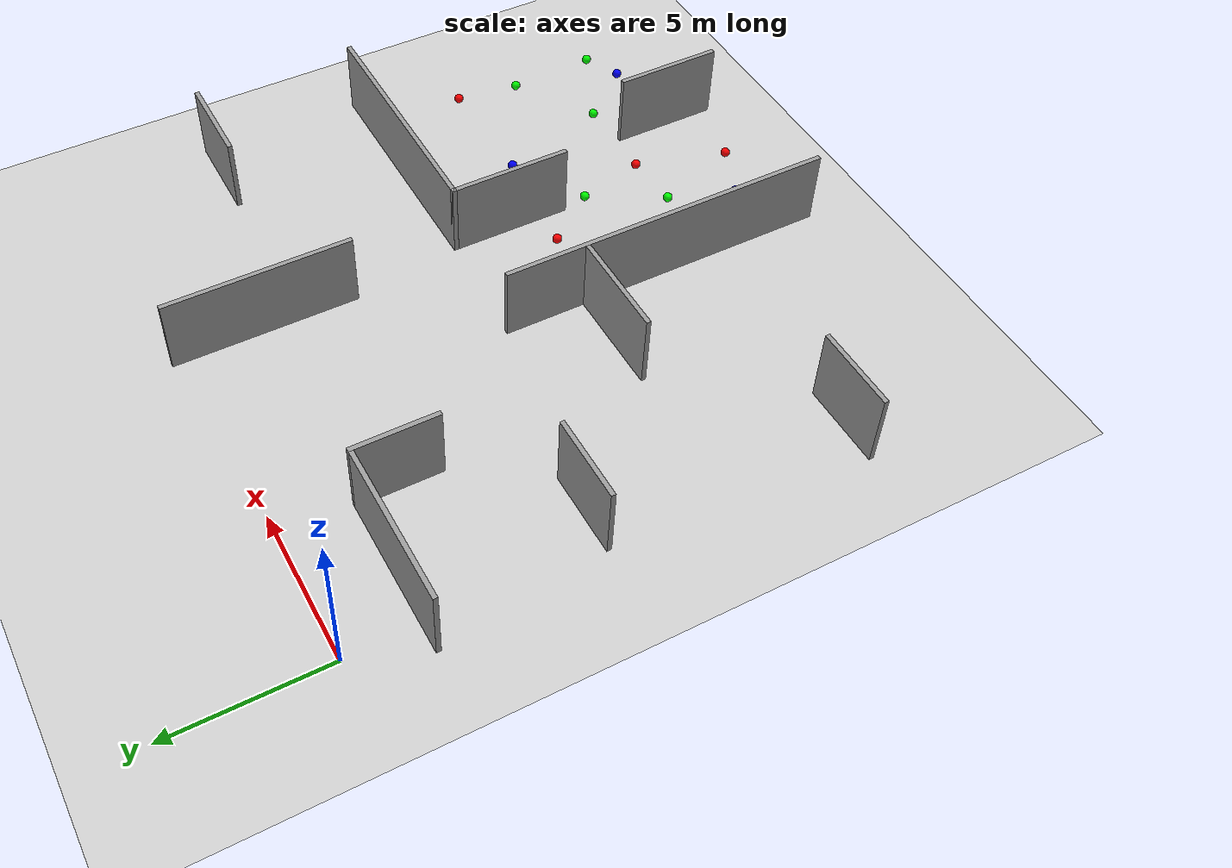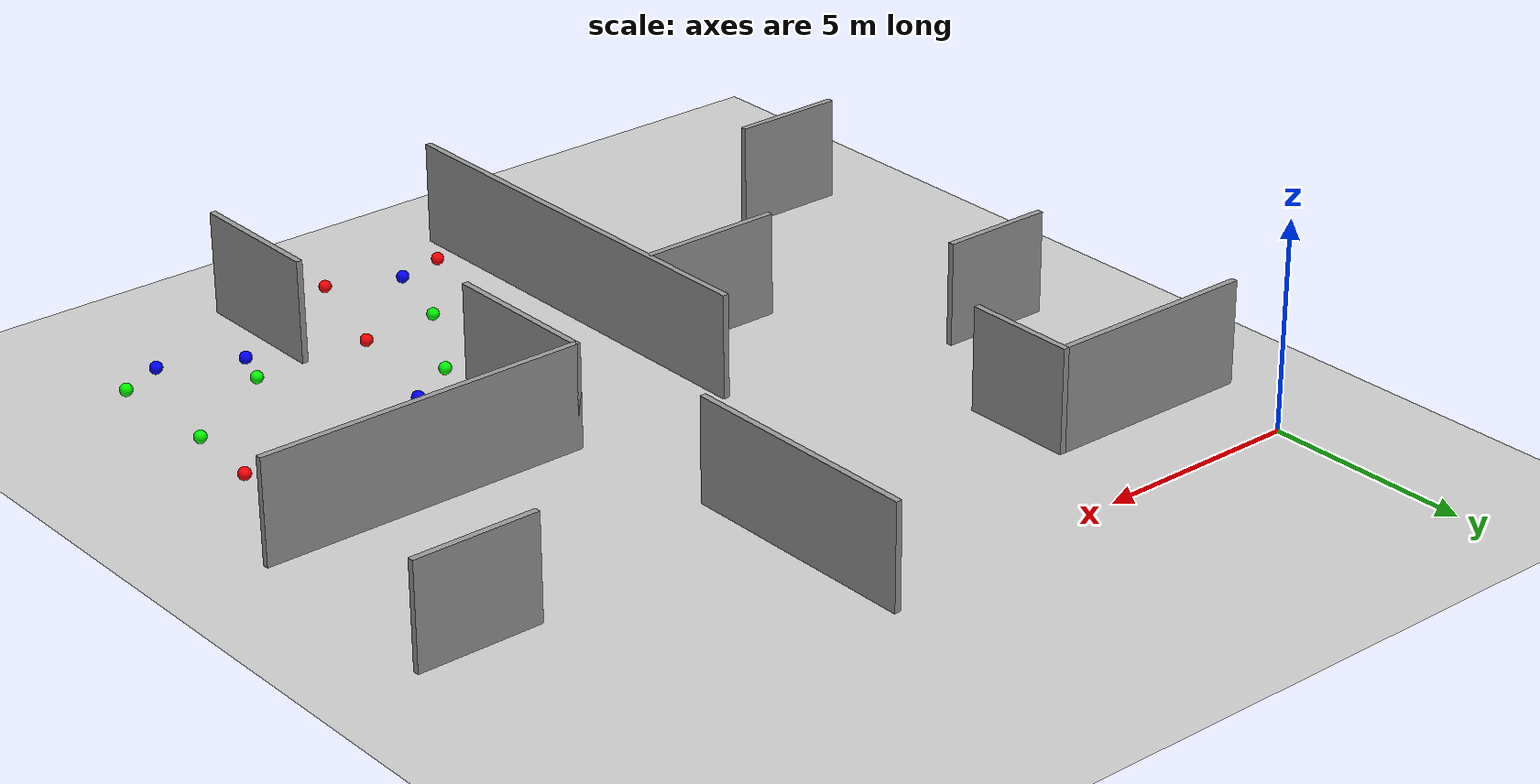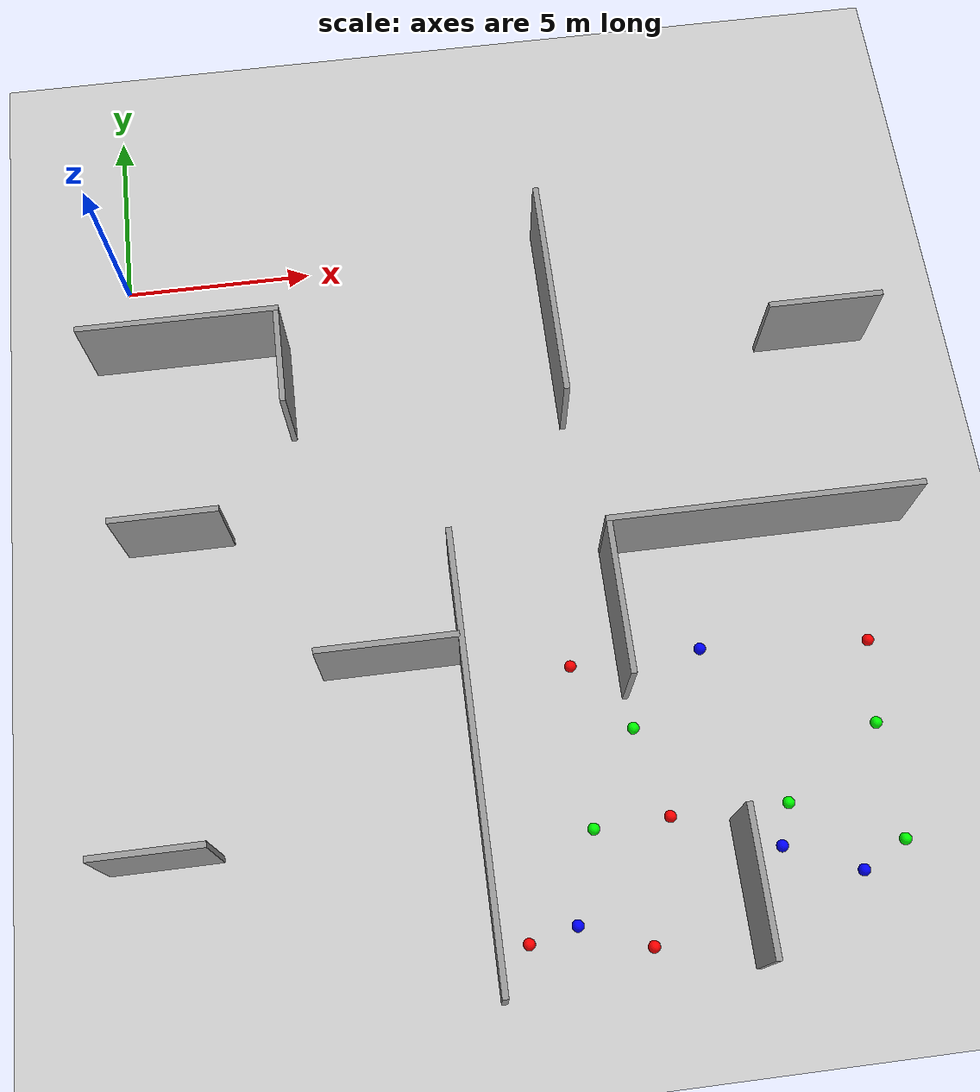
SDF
<sdf version="1.6">
 <world name="default">
  <model name="ground_plane">
   <static>1</static>
   <link name="link">
    <collision name="collision">
     <geometry><plane><normal>0 0 1</normal><size>100 100</size></plane></geometry>
     <surface><friction><ode><mu>100</mu><mu2>50</mu2></ode></friction></surface>
    </collision>
    <visual name="visual">
     <cast_shadows>0</cast_shadows>
     <geometry><plane><normal>0 0 1</normal><size>100 100</size></plane></geometry>
     <material>
      <script><uri>file://media/materials/scripts/gazebo.material</uri><name>Gazebo/Grey</name></script>
     </material>
    </visual>
   </link>
  </model>
  <model name="little_room">
   <pose>9.47484 -9.72783 0 0 -0 0</pose>
   <link name="Wall_15">
    <collision name="Wall_15_Collision">
     <geometry><box><size>11 0.15 2.5</size></box></geometry>
     <pose>0 0 1.25 0 -0 0</pose>
    </collision>
    <visual name="Wall_15_Visual">
     <pose>0 0 1.25 0 -0 0</pose>
     <geometry><box><size>11 0.15 2.5</size></box></geometry>
     <material>
      <script><uri>file://media/materials/scripts/gazebo.material</uri><name>Gazebo/Grey</name></script>
      <ambient>1 1 1 1</ambient>
     </material>
    </visual>
    <pose>-1.47005 -4.68117 0 0 -0 1.5708</pose>
   </link>
   <link name="Wall_17">
    <collision name="Wall_17_Collision">
     <geometry><box><size>8 0.15 2.5</size></box></geometry>
     <pose>0 0 1.25 0 -0 0</pose>
    </collision>
    <visual name="Wall_17_Visual">
     <pose>0 0 1.25 0 -0 0</pose>
     <geometry><box><size>8 0.15 2.5</size></box></geometry>
     <material>
      <script><uri>file://media/materials/scripts/gazebo.material</uri><name>Gazebo/Grey</name></script>
      <ambient>1 1 1 1</ambient>
     </material>
    </visual>
    <pose>6.36864 0.578681 0 0 -0 0</pose>
   </link>
   <link name="Wall_2">
    <collision name="Wall_2_Collision">
     <geometry><box><size>5.25 0.15 2.5</size></box></geometry>
     <pose>0 0 1.25 0 -0 0</pose>
    </collision>
    <visual name="Wall_2_Visual">
     <pose>0 0 1.25 0 -0 0</pose>
     <geometry><box><size>5.25 0.15 2.5</size></box></geometry>
     <material>
      <script><uri>file://media/materials/scripts/gazebo.material</uri><name>Gazebo/Grey</name></script>
      <ambient>1 1 1 1</ambient>
     </material>
    </visual>
    <pose>-7.78484 7.39778 0 0 -0 0</pose>
   </link>
   <link name="Wall_21">
    <collision name="Wall_21_Collision">
     <geometry><box><size>6 0.15 2.5</size></box></geometry>
     <pose>0 0 1.25 0 -0 0</pose>
    </collision>
    <visual name="Wall_21_Visual">
     <pose>0 0 1.25 0 -0 0</pose>
     <geometry><box><size>6 0.15 2.5</size></box></geometry>
     <material>
      <script><uri>file://media/materials/scripts/gazebo.material</uri><name>Gazebo/Grey</name></script>
      <ambient>1 1 1 1</ambient>
     </material>
    </visual>
    <pose>1.9334 7.18117 0 0 0 -1.5708</pose>
   </link>
   <link name="Wall_23">
    <collision name="Wall_23_Collision">
     <geometry><box><size>2.75 0.15 2.5</size></box></geometry>
     <pose>0 0 1.25 0 -0 0</pose>
    </collision>
    <visual name="Wall_23_Visual">
     <pose>0 0 1.25 0 -0 0</pose>
     <geometry><box><size>2.75 0.15 2.5</size></box></geometry>
     <material>
      <script><uri>file://media/materials/scripts/gazebo.material</uri><name>Gazebo/Grey</name></script>
      <ambient>1 1 1 1</ambient>
     </material>
    </visual>
    <pose>-8.3666 2.00617 0 0 -0 0</pose>
   </link>
   <link name="Wall_25">
    <collision name="Wall_25_Collision">
     <geometry><box><size>4 0.15 2.5</size></box></geometry>
     <pose>0 0 1.25 0 -0 0</pose>
    </collision>
    <visual name="Wall_25_Visual">
     <pose>0 0 1.25 0 -0 0</pose>
     <geometry><box><size>4 0.15 2.5</size></box></geometry>
     <material>
      <script><uri>file://media/materials/scripts/gazebo.material</uri><name>Gazebo/Grey</name></script>
      <ambient>1 1 1 1</ambient>
     </material>
    </visual>
    <pose>2.44364 -1.34632 0 0 0 -1.5708</pose>
   </link>
   <link name="Wall_28">
    <collision name="Wall_28_Collision">
     <geometry><box><size>3.5 0.15 2.5</size></box></geometry>
     <pose>0 0 1.25 0 -0 0</pose>
    </collision>
    <visual name="Wall_28_Visual">
     <pose>0 0 1.25 0 -0 0</pose>
     <geometry><box><size>3.5 0.15 2.5</size></box></geometry>
     <material>
      <script><uri>file://media/materials/scripts/gazebo.material</uri><name>Gazebo/Grey</name></script>
      <ambient>1 1 1 1</ambient>
     </material>
    </visual>
    <pose>-3.25737 -1.88188 0 0 -0 3.14159</pose>
   </link>
   <link name="Wall_3">
    <collision name="Wall_3_Collision">
     <geometry><box><size>2.75 0.15 2.5</size></box></geometry>
     <pose>0 0 1.25 0 -0 0</pose>
    </collision>
    <visual name="Wall_3_Visual">
     <pose>0 0 1.25 0 -0 0</pose>
     <geometry><box><size>2.75 0.15 2.5</size></box></geometry>
     <material>
      <script><uri>file://media/materials/scripts/gazebo.material</uri><name>Gazebo/Grey</name></script>
      <ambient>1 1 1 1</ambient>
     </material>
    </visual>
    <pose>-5.23484 6.09778 0 0 0 -1.5708</pose>
   </link>
   <link name="Wall_30">
    <collision name="Wall_30_Collision">
     <geometry><box><size>3.5 0.15 2.5</size></box></geometry>
     <pose>0 0 1.25 0 -0 0</pose>
    </collision>
    <visual name="Wall_30_Visual">
     <pose>0 0 1.25 0 -0 0</pose>
     <geometry><box><size>3.5 0.15 2.5</size></box></geometry>
     <material>
      <script><uri>file://media/materials/scripts/gazebo.material</uri><name>Gazebo/Grey</name></script>
      <ambient>1 1 1 1</ambient>
     </material>
    </visual>
    <pose>4.56112 -8.37241 0 0 -0 1.5708</pose>
   </link>
   <link name="Wall_33">
    <collision name="Wall_33_Collision">
     <geometry><box><size>3 0.15 2.5</size></box></geometry>
     <pose>0 0 1.25 0 -0 0</pose>
    </collision>
    <visual name="Wall_33_Visual">
     <pose>0 0 1.25 0 -0 0</pose>
     <geometry><box><size>3 0.15 2.5</size></box></geometry>
     <material>
      <script><uri>file://media/materials/scripts/gazebo.material</uri><name>Gazebo/Grey</name></script>
      <ambient>1 1 1 1</ambient>
     </material>
    </visual>
    <pose>8.97231 5.91507 0 0 -0 3.14159</pose>
   </link>
   <link name="Wall_7">
    <collision name="Wall_7_Collision">
     <geometry><box><size>2.75 0.15 2.5</size></box></geometry>
     <pose>0 0 1.25 0 -0 0</pose>
    </collision>
    <visual name="Wall_7_Visual">
     <pose>0 0 1.25 0 -0 0</pose>
     <geometry><box><size>2.75 0.15 2.5</size></box></geometry>
     <material>
      <script><uri>file://media/materials/scripts/gazebo.material</uri><name>Gazebo/Grey</name></script>
      <ambient>1 1 1 1</ambient>
     </material>
    </visual>
    <pose>-9.09731 -6.06473 0 0 -0 3.14159</pose>
   </link>
   <static>1</static>
  </model>
  <model name="merdobot_world_model_son_1">
   <link name="link_2_clone_0_clone_0_clone">
    <pose>8.81039 -9.78149 -0.412733 0 -0 0</pose>
    <inertial>
     <mass>0.001</mass>
     <inertia><ixx>0.1</ixx><ixy>0</ixy><ixz>0</ixz><iyy>0.1</iyy><iyz>0</iyz><izz>0.1</izz></inertia>
    </inertial>
    <visual name="visual">
     <geometry><sphere><radius>0.15</radius></sphere></geometry>
     <material>
      <lighting>1</lighting>
      <script><uri>file://media/materials/scripts/gazebo.material</uri><name>Gazebo/Grey</name></script>
      <ambient>1 0 0 0</ambient>
      <diffuse>1 0 0 0</diffuse>
      <specular>1 0 0 0</specular>
      <emissive>0 0 0 1</emissive>
      <shader type="vertex"><normal_map>__default__</normal_map></shader>
     </material>
    </visual>
    <collision name="collision">
     <geometry><sphere><radius>0.15</radius></sphere></geometry>
     <surface>
      <friction>
       <ode><mu>1</mu><mu2>1</mu2><fdir1>0 0 0</fdir1><slip1>0</slip1><slip2>0</slip2></ode>
       <torsional>
        <coefficient>1</coefficient>
        <patch_radius>0</patch_radius>
        <surface_radius>0</surface_radius>
        <use_patch_radius>1</use_patch_radius>
        <ode><slip>0</slip></ode>
       </torsional>
      </friction>
      <bounce><restitution_coefficient>0</restitution_coefficient><threshold>1e+06</threshold></bounce>
      <contact>
       <collide_without_contact>0</collide_without_contact>
       <collide_without_contact_bitmask>1</collide_without_contact_bitmask>
       <collide_bitmask>1</collide_bitmask>
       <ode>
        <soft_cfm>0</soft_cfm>
        <soft_erp>0.2</soft_erp>
        <kp>1e+13</kp>
        <kd>1</kd>
        <max_vel>0.01</max_vel>
        <min_depth>0</min_depth>
       </ode>
       <bullet>
        <split_impulse>1</split_impulse>
        <split_impulse_penetration_threshold>-0.01</split_impulse_penetration_threshold>
        <soft_cfm>0</soft_cfm>
        <soft_erp>0.2</soft_erp>
        <kp>1e+13</kp>
        <kd>1</kd>
       </bullet>
      </contact>
     </surface>
    </collision>
   </link>
   <link name="link_2_clone_0_clone_0_clone_clone_0_clone">
    <pose>9.79759 -16.7248 -0.393938 0 -0 0</pose>
    <inertial>
     <mass>0.001</mass>
     <inertia><ixx>0.1</ixx><ixy>0</ixy><ixz>0</ixz><iyy>0.1</iyy><iyz>0</iyz><izz>0.1</izz></inertia>
    </inertial>
    <visual name="visual">
     <geometry><sphere><radius>0.15</radius></sphere></geometry>
     <material>
      <lighting>1</lighting>
      <script><uri>file://media/materials/scripts/gazebo.material</uri><name>Gazebo/Grey</name></script>
      <ambient>1 0 0 0</ambient>
      <diffuse>1 0 0 0</diffuse>
      <specular>1 0 0 0</specular>
      <emissive>0 0 0 1</emissive>
      <shader type="vertex"><normal_map>__default__</normal_map></shader>
     </material>
    </visual>
    <collision name="collision">
     <geometry><sphere><radius>0.15</radius></sphere></geometry>
     <surface>
      <friction>
       <ode><mu>1</mu><mu2>1</mu2><fdir1>0 0 0</fdir1><slip1>0</slip1><slip2>0</slip2></ode>
       <torsional>
        <coefficient>1</coefficient>
        <patch_radius>0</patch_radius>
        <surface_radius>0</surface_radius>
        <use_patch_radius>1</use_patch_radius>
        <ode><slip>0</slip></ode>
       </torsional>
      </friction>
      <bounce><restitution_coefficient>0</restitution_coefficient><threshold>1e+06</threshold></bounce>
      <contact>
       <collide_without_contact>0</collide_without_contact>
       <collide_without_contact_bitmask>1</collide_without_contact_bitmask>
       <collide_bitmask>1</collide_bitmask>
       <ode>
        <soft_cfm>0</soft_cfm>
        <soft_erp>0.2</soft_erp>
        <kp>1e+13</kp>
        <kd>1</kd>
        <max_vel>0.01</max_vel>
        <min_depth>0</min_depth>
       </ode>
       <bullet>
        <split_impulse>1</split_impulse>
        <split_impulse_penetration_threshold>-0.01</split_impulse_penetration_threshold>
        <soft_cfm>0</soft_cfm>
        <soft_erp>0.2</soft_erp>
        <kp>1e+13</kp>
        <kd>1</kd>
       </bullet>
      </contact>
     </surface>
    </collision>
   </link>
   <link name="link_2_clone_0_clone_0_clone_clone_0_clone_clone">
    <pose>6.89703 -16.3138 -0.405701 0 -0 0</pose>
    <inertial>
     <mass>0.001</mass>
     <inertia><ixx>0.1</ixx><ixy>0</ixy><ixz>0</ixz><iyy>0.1</iyy><iyz>0</iyz><izz>0.1</izz></inertia>
    </inertial>
    <visual name="visual">
     <geometry><sphere><radius>0.15</radius></sphere></geometry>
     <material>
      <lighting>1</lighting>
      <script><uri>file://media/materials/scripts/gazebo.material</uri><name>Gazebo/Grey</name></script>
      <ambient>1 0 0 0</ambient>
      <diffuse>1 0 0 0</diffuse>
      <specular>1 0 0 0</specular>
      <emissive>0 0 0 1</emissive>
      <shader type="vertex"><normal_map>__default__</normal_map></shader>
     </material>
    </visual>
    <collision name="collision">
     <geometry><sphere><radius>0.15</radius></sphere></geometry>
     <surface>
      <friction>
       <ode><mu>1</mu><mu2>1</mu2><fdir1>0 0 0</fdir1><slip1>0</slip1><slip2>0</slip2></ode>
       <torsional>
        <coefficient>1</coefficient>
        <patch_radius>0</patch_radius>
        <surface_radius>0</surface_radius>
        <use_patch_radius>1</use_patch_radius>
        <ode><slip>0</slip></ode>
       </torsional>
      </friction>
      <bounce><restitution_coefficient>0</restitution_coefficient><threshold>1e+06</threshold></bounce>
      <contact>
       <collide_without_contact>0</collide_without_contact>
       <collide_without_contact_bitmask>1</collide_without_contact_bitmask>
       <collide_bitmask>1</collide_bitmask>
       <ode>
        <soft_cfm>0</soft_cfm>
        <soft_erp>0.2</soft_erp>
        <kp>1e+13</kp>
        <kd>1</kd>
        <max_vel>0.01</max_vel>
        <min_depth>0</min_depth>
       </ode>
       <bullet>
        <split_impulse>1</split_impulse>
        <split_impulse_penetration_threshold>-0.01</split_impulse_penetration_threshold>
        <soft_cfm>0</soft_cfm>
        <soft_erp>0.2</soft_erp>
        <kp>1e+13</kp>
        <kd>1</kd>
       </bullet>
      </contact>
     </surface>
    </collision>
   </link>
   <link name="link_2_clone_0_clone_0_clone_clone_1">
    <pose>10.6799 -13.781 -0.403389 0 -0.029702 0</pose>
    <inertial>
     <mass>0.001</mass>
     <inertia><ixx>0.1</ixx><ixy>0</ixy><ixz>0</ixz><iyy>0.1</iyy><iyz>0</iyz><izz>0.1</izz></inertia>
    </inertial>
    <visual name="visual">
     <geometry><sphere><radius>0.15</radius></sphere></geometry>
     <material>
      <lighting>1</lighting>
      <script><uri>file://media/materials/scripts/gazebo.material</uri><name>Gazebo/Grey</name></script>
      <ambient>1 0 0 0</ambient>
      <diffuse>1 0 0 0</diffuse>
      <specular>1 0 0 0</specular>
      <emissive>0 0 0 1</emissive>
      <shader type="vertex"><normal_map>__default__</normal_map></shader>
     </material>
    </visual>
    <collision name="collision">
     <geometry><sphere><radius>0.15</radius></sphere></geometry>
     <surface>
      <friction>
       <ode><mu>1</mu><mu2>1</mu2><fdir1>0 0 0</fdir1><slip1>0</slip1><slip2>0</slip2></ode>
       <torsional>
        <coefficient>1</coefficient>
        <patch_radius>0</patch_radius>
        <surface_radius>0</surface_radius>
        <use_patch_radius>1</use_patch_radius>
        <ode><slip>0</slip></ode>
       </torsional>
      </friction>
      <bounce><restitution_coefficient>0</restitution_coefficient><threshold>1e+06</threshold></bounce>
      <contact>
       <collide_without_contact>0</collide_without_contact>
       <collide_without_contact_bitmask>1</collide_without_contact_bitmask>
       <collide_bitmask>1</collide_bitmask>
       <ode>
        <soft_cfm>0</soft_cfm>
        <soft_erp>0.2</soft_erp>
        <kp>1e+13</kp>
        <kd>1</kd>
        <max_vel>0.01</max_vel>
        <min_depth>0</min_depth>
       </ode>
       <bullet>
        <split_impulse>1</split_impulse>
        <split_impulse_penetration_threshold>-0.01</split_impulse_penetration_threshold>
        <soft_cfm>0</soft_cfm>
        <soft_erp>0.2</soft_erp>
        <kp>1e+13</kp>
        <kd>1</kd>
       </bullet>
      </contact>
     </surface>
    </collision>
   </link>
   <link name="link_2_clone_clone_0_clone_clone_0_clone_clone_clone">
    <pose>16.3559 -10.0424 -0.329384 0 -0 0</pose>
    <inertial>
     <mass>0.001</mass>
     <inertia><ixx>0.1</ixx><ixy>0</ixy><ixz>0</ixz><iyy>0.1</iyy><iyz>0</iyz><izz>0.1</izz></inertia>
    </inertial>
    <visual name="visual">
     <geometry><sphere><radius>0.15</radius></sphere></geometry>
     <material>
      <lighting>1</lighting>
      <script><uri>file://media/materials/scripts/gazebo.material</uri><name>Gazebo/Grey</name></script>
      <ambient>1 0 0 0</ambient>
      <diffuse>1 0 0 0</diffuse>
      <specular>1 0 0 0</specular>
      <emissive>1 0 0 0</emissive>
      <shader type="vertex"><normal_map>__default__</normal_map></shader>
     </material>
    </visual>
    <collision name="collision">
     <geometry><sphere><radius>0.15</radius></sphere></geometry>
     <surface>
      <friction>
       <ode><mu>1</mu><mu2>1</mu2><fdir1>0 0 0</fdir1><slip1>0</slip1><slip2>0</slip2></ode>
       <torsional>
        <coefficient>1</coefficient>
        <patch_radius>0</patch_radius>
        <surface_radius>0</surface_radius>
        <use_patch_radius>1</use_patch_radius>
        <ode><slip>0</slip></ode>
       </torsional>
      </friction>
      <bounce><restitution_coefficient>0</restitution_coefficient><threshold>1e+06</threshold></bounce>
      <contact>
       <collide_without_contact>0</collide_without_contact>
       <collide_without_contact_bitmask>1</collide_without_contact_bitmask>
       <collide_bitmask>1</collide_bitmask>
       <ode>
        <soft_cfm>0</soft_cfm>
        <soft_erp>0.2</soft_erp>
        <kp>1e+13</kp>
        <kd>1</kd>
        <max_vel>0.01</max_vel>
        <min_depth>0</min_depth>
       </ode>
       <bullet>
        <split_impulse>1</split_impulse>
        <split_impulse_penetration_threshold>-0.01</split_impulse_penetration_threshold>
        <soft_cfm>0</soft_cfm>
        <soft_erp>0.2</soft_erp>
        <kp>1e+13</kp>
        <kd>1</kd>
       </bullet>
      </contact>
     </surface>
    </collision>
   </link>
   <link name="link_2_clone_clone_clone_0_clone_clone_clone_clone_clone_0">
    <pose>15.0561 -15.5973 -0.376194 0 -0 0</pose>
    <inertial>
     <mass>0.001</mass>
     <inertia><ixx>0.1</ixx><ixy>0</ixy><ixz>0</ixz><iyy>0.1</iyy><iyz>0</iyz><izz>0.1</izz></inertia>
    </inertial>
    <visual name="visual">
     <geometry><sphere><radius>0.15</radius></sphere></geometry>
     <material>
      <lighting>1</lighting>
      <script><uri>file://media/materials/scripts/gazebo.material</uri><name>Gazebo/Grey</name></script>
      <ambient>0 0 1 0</ambient>
      <diffuse>0 0 1 0</diffuse>
      <specular>0 0 1 0</specular>
      <emissive>0 0 0 1</emissive>
      <shader type="vertex"><normal_map>__default__</normal_map></shader>
     </material>
    </visual>
    <collision name="collision">
     <geometry><sphere><radius>0.15</radius></sphere></geometry>
     <surface>
      <friction>
       <ode><mu>1</mu><mu2>1</mu2><fdir1>0 0 0</fdir1><slip1>0</slip1><slip2>0</slip2></ode>
       <torsional>
        <coefficient>1</coefficient>
        <patch_radius>0</patch_radius>
        <surface_radius>0</surface_radius>
        <use_patch_radius>1</use_patch_radius>
        <ode><slip>0</slip></ode>
       </torsional>
      </friction>
      <bounce><restitution_coefficient>0</restitution_coefficient><threshold>1e+06</threshold></bounce>
      <contact>
       <collide_without_contact>0</collide_without_contact>
       <collide_without_contact_bitmask>1</collide_without_contact_bitmask>
       <collide_bitmask>1</collide_bitmask>
       <ode>
        <soft_cfm>0</soft_cfm>
        <soft_erp>0.2</soft_erp>
        <kp>1e+13</kp>
        <kd>1</kd>
        <max_vel>0.01</max_vel>
        <min_depth>0</min_depth>
       </ode>
       <bullet>
        <split_impulse>1</split_impulse>
        <split_impulse_penetration_threshold>-0.01</split_impulse_penetration_threshold>
        <soft_cfm>0</soft_cfm>
        <soft_erp>0.2</soft_erp>
        <kp>1e+13</kp>
        <kd>1</kd>
       </bullet>
      </contact>
     </surface>
    </collision>
   </link>
   <link name="link_2_clone_clone_clone_0_clone_clone_clone_clone_clone_0_clone">
    <pose>13.2315 -14.8013 -0.409221 0 -0 0</pose>
    <inertial>
     <mass>0.001</mass>
     <inertia><ixx>0.1</ixx><ixy>0</ixy><ixz>0</ixz><iyy>0.1</iyy><iyz>0</iyz><izz>0.1</izz></inertia>
    </inertial>
    <visual name="visual">
     <geometry><sphere><radius>0.15</radius></sphere></geometry>
     <material>
      <lighting>1</lighting>
      <script><uri>file://media/materials/scripts/gazebo.material</uri><name>Gazebo/Grey</name></script>
      <ambient>0 0 1 0</ambient>
      <diffuse>0 0 1 0</diffuse>
      <specular>0 0 1 0</specular>
      <emissive>0 0 0 1</emissive>
      <shader type="vertex"><normal_map>__default__</normal_map></shader>
     </material>
    </visual>
    <collision name="collision">
     <geometry><sphere><radius>0.15</radius></sphere></geometry>
     <surface>
      <friction>
       <ode><mu>1</mu><mu2>1</mu2><fdir1>0 0 0</fdir1><slip1>0</slip1><slip2>0</slip2></ode>
       <torsional>
        <coefficient>1</coefficient>
        <patch_radius>0</patch_radius>
        <surface_radius>0</surface_radius>
        <use_patch_radius>1</use_patch_radius>
        <ode><slip>0</slip></ode>
       </torsional>
      </friction>
      <bounce><restitution_coefficient>0</restitution_coefficient><threshold>1e+06</threshold></bounce>
      <contact>
       <collide_without_contact>0</collide_without_contact>
       <collide_without_contact_bitmask>1</collide_without_contact_bitmask>
       <collide_bitmask>1</collide_bitmask>
       <ode>
        <soft_cfm>0</soft_cfm>
        <soft_erp>0.2</soft_erp>
        <kp>1e+13</kp>
        <kd>1</kd>
        <max_vel>0.01</max_vel>
        <min_depth>0</min_depth>
       </ode>
       <bullet>
        <split_impulse>1</split_impulse>
        <split_impulse_penetration_threshold>-0.01</split_impulse_penetration_threshold>
        <soft_cfm>0</soft_cfm>
        <soft_erp>0.2</soft_erp>
        <kp>1e+13</kp>
        <kd>1</kd>
       </bullet>
      </contact>
     </surface>
    </collision>
   </link>
   <link name="link_2_clone_clone_clone_clone_0_clone_clone_clone_0">
    <pose>10.1328 -11.5265 -0.430275 0 -0 0</pose>
    <inertial>
     <mass>0.001</mass>
     <inertia><ixx>0.1</ixx><ixy>0</ixy><ixz>0</ixz><iyy>0.1</iyy><iyz>0</iyz><izz>0.1</izz></inertia>
    </inertial>
    <visual name="visual">
     <geometry><sphere><radius>0.15</radius></sphere></geometry>
     <material>
      <lighting>1</lighting>
      <script><uri>file://media/materials/scripts/gazebo.material</uri><name>Gazebo/Grey</name></script>
      <ambient>0 1 0 0</ambient>
      <diffuse>0 1 0 0</diffuse>
      <specular>0 1 0 0</specular>
      <emissive>0 0 0 1</emissive>
      <shader type="vertex"><normal_map>__default__</normal_map></shader>
     </material>
    </visual>
    <collision name="collision">
     <geometry><sphere><radius>0.15</radius></sphere></geometry>
     <surface>
      <friction>
       <ode><mu>1</mu><mu2>1</mu2><fdir1>0 0 0</fdir1><slip1>0</slip1><slip2>0</slip2></ode>
       <torsional>
        <coefficient>1</coefficient>
        <patch_radius>0</patch_radius>
        <surface_radius>0</surface_radius>
        <use_patch_radius>1</use_patch_radius>
        <ode><slip>0</slip></ode>
       </torsional>
      </friction>
      <bounce><restitution_coefficient>0</restitution_coefficient><threshold>1e+06</threshold></bounce>
      <contact>
       <collide_without_contact>0</collide_without_contact>
       <collide_without_contact_bitmask>1</collide_without_contact_bitmask>
       <collide_bitmask>1</collide_bitmask>
       <ode>
        <soft_cfm>0</soft_cfm>
        <soft_erp>0.2</soft_erp>
        <kp>1e+13</kp>
        <kd>1</kd>
        <max_vel>0.01</max_vel>
        <min_depth>0</min_depth>
       </ode>
       <bullet>
        <split_impulse>1</split_impulse>
        <split_impulse_penetration_threshold>-0.01</split_impulse_penetration_threshold>
        <soft_cfm>0</soft_cfm>
        <soft_erp>0.2</soft_erp>
        <kp>1e+13</kp>
        <kd>1</kd>
       </bullet>
      </contact>
     </surface>
    </collision>
   </link>
   <link name="link_2_clone_clone_clone_clone_0_clone_clone_clone_0_clone_0">
    <pose>16.1138 -12.1342 -0.370556 0 -0 0</pose>
    <inertial>
     <mass>0.001</mass>
     <inertia><ixx>0.1</ixx><ixy>0</ixy><ixz>0</ixz><iyy>0.1</iyy><iyz>0</iyz><izz>0.1</izz></inertia>
    </inertial>
    <visual name="visual">
     <geometry><sphere><radius>0.15</radius></sphere></geometry>
     <material>
      <lighting>1</lighting>
      <script><uri>file://media/materials/scripts/gazebo.material</uri><name>Gazebo/Grey</name></script>
      <ambient>0 1 0 0</ambient>
      <diffuse>0 1 0 0</diffuse>
      <specular>0 1 0 0</specular>
      <emissive>0 0 0 1</emissive>
      <shader type="vertex"><normal_map>__default__</normal_map></shader>
     </material>
    </visual>
    <collision name="collision">
     <geometry><sphere><radius>0.15</radius></sphere></geometry>
     <surface>
      <friction>
       <ode><mu>1</mu><mu2>1</mu2><fdir1>0 0 0</fdir1><slip1>0</slip1><slip2>0</slip2></ode>
       <torsional>
        <coefficient>1</coefficient>
        <patch_radius>0</patch_radius>
        <surface_radius>0</surface_radius>
        <use_patch_radius>1</use_patch_radius>
        <ode><slip>0</slip></ode>
       </torsional>
      </friction>
      <bounce><restitution_coefficient>0</restitution_coefficient><threshold>1e+06</threshold></bounce>
      <contact>
       <collide_without_contact>0</collide_without_contact>
       <collide_without_contact_bitmask>1</collide_without_contact_bitmask>
       <collide_bitmask>1</collide_bitmask>
       <ode>
        <soft_cfm>0</soft_cfm>
        <soft_erp>0.2</soft_erp>
        <kp>1e+13</kp>
        <kd>1</kd>
        <max_vel>0.01</max_vel>
        <min_depth>0</min_depth>
       </ode>
       <bullet>
        <split_impulse>1</split_impulse>
        <split_impulse_penetration_threshold>-0.01</split_impulse_penetration_threshold>
        <soft_cfm>0</soft_cfm>
        <soft_erp>0.2</soft_erp>
        <kp>1e+13</kp>
        <kd>1</kd>
       </bullet>
      </contact>
     </surface>
    </collision>
   </link>
   <link name="link_2_clone_clone_clone_clone_0_clone_clone_clone_1">
    <pose>8.78835 -13.857 -0.367803 0 -0.029702 0</pose>
    <inertial>
     <mass>0.001</mass>
     <inertia><ixx>0.1</ixx><ixy>0</ixy><ixz>0</ixz><iyy>0.1</iyy><iyz>0</iyz><izz>0.1</izz></inertia>
    </inertial>
    <visual name="visual">
     <geometry><sphere><radius>0.15</radius></sphere></geometry>
     <material>
      <lighting>1</lighting>
      <script><uri>file://media/materials/scripts/gazebo.material</uri><name>Gazebo/Grey</name></script>
      <ambient>0 1 0 0</ambient>
      <diffuse>0 1 0 0</diffuse>
      <specular>0 1 0 0</specular>
      <emissive>0 0 0 1</emissive>
      <shader type="vertex"><normal_map>__default__</normal_map></shader>
     </material>
    </visual>
    <collision name="collision">
     <geometry><sphere><radius>0.15</radius></sphere></geometry>
     <surface>
      <friction>
       <ode><mu>1</mu><mu2>1</mu2><fdir1>0 0 0</fdir1><slip1>0</slip1><slip2>0</slip2></ode>
       <torsional>
        <coefficient>1</coefficient>
        <patch_radius>0</patch_radius>
        <surface_radius>0</surface_radius>
        <use_patch_radius>1</use_patch_radius>
        <ode><slip>0</slip></ode>
       </torsional>
      </friction>
      <bounce><restitution_coefficient>0</restitution_coefficient><threshold>1e+06</threshold></bounce>
      <contact>
       <collide_without_contact>0</collide_without_contact>
       <collide_without_contact_bitmask>1</collide_without_contact_bitmask>
       <collide_bitmask>1</collide_bitmask>
       <ode>
        <soft_cfm>0</soft_cfm>
        <soft_erp>0.2</soft_erp>
        <kp>1e+13</kp>
        <kd>1</kd>
        <max_vel>0.01</max_vel>
        <min_depth>0</min_depth>
       </ode>
       <bullet>
        <split_impulse>1</split_impulse>
        <split_impulse_penetration_threshold>-0.01</split_impulse_penetration_threshold>
        <soft_cfm>0</soft_cfm>
        <soft_erp>0.2</soft_erp>
        <kp>1e+13</kp>
        <kd>1</kd>
       </bullet>
      </contact>
     </surface>
    </collision>
   </link>
   <link name="link_2_clone_clone_clone_clone_clone_clone_0_clone">
    <pose>12.023 -9.8668 0.106085 0 -0 0</pose>
    <inertial>
     <mass>0.001</mass>
     <inertia><ixx>0.1</ixx><ixy>0</ixy><ixz>0</ixz><iyy>0.1</iyy><iyz>0</iyz><izz>0.1</izz></inertia>
    </inertial>
    <visual name="visual">
     <geometry><sphere><radius>0.15</radius></sphere></geometry>
     <material>
      <lighting>1</lighting>
      <script><uri>file://media/materials/scripts/gazebo.material</uri><name>Gazebo/Grey</name></script>
      <ambient>0 0 1 0</ambient>
      <diffuse>0 0 1 0</diffuse>
      <specular>0 0 1 0</specular>
      <emissive>0 0 0 1</emissive>
      <shader type="vertex"><normal_map>__default__</normal_map></shader>
     </material>
    </visual>
    <collision name="collision">
     <geometry><sphere><radius>0.15</radius></sphere></geometry>
     <surface>
      <friction>
       <ode><mu>1</mu><mu2>1</mu2><fdir1>0 0 0</fdir1><slip1>0</slip1><slip2>0</slip2></ode>
       <torsional>
        <coefficient>1</coefficient>
        <patch_radius>0</patch_radius>
        <surface_radius>0</surface_radius>
        <use_patch_radius>1</use_patch_radius>
        <ode><slip>0</slip></ode>
       </torsional>
      </friction>
      <bounce><restitution_coefficient>0</restitution_coefficient><threshold>1e+06</threshold></bounce>
      <contact>
       <collide_without_contact>0</collide_without_contact>
       <collide_without_contact_bitmask>1</collide_without_contact_bitmask>
       <collide_bitmask>1</collide_bitmask>
       <ode>
        <soft_cfm>0</soft_cfm>
        <soft_erp>0.2</soft_erp>
        <kp>1e+13</kp>
        <kd>1</kd>
        <max_vel>0.01</max_vel>
        <min_depth>0</min_depth>
       </ode>
       <bullet>
        <split_impulse>1</split_impulse>
        <split_impulse_penetration_threshold>-0.01</split_impulse_penetration_threshold>
        <soft_cfm>0</soft_cfm>
        <soft_erp>0.2</soft_erp>
        <kp>1e+13</kp>
        <kd>1</kd>
       </bullet>
      </contact>
     </surface>
    </collision>
   </link>
   <link name="link_2_clone_clone_clone_clone_clone_clone_0_clone_clone">
    <pose>13.5866 -13.8057 -0.403527 0 -0 0</pose>
    <inertial>
     <mass>0.001</mass>
     <inertia><ixx>0.1</ixx><ixy>0</ixy><ixz>0</ixz><iyy>0.1</iyy><iyz>0</iyz><izz>0.1</izz></inertia>
    </inertial>
    <visual name="visual">
     <geometry><sphere><radius>0.15</radius></sphere></geometry>
     <material>
      <lighting>1</lighting>
      <script><uri>file://media/materials/scripts/gazebo.material</uri><name>Gazebo/Grey</name></script>
      <ambient>0 1 0 0</ambient>
      <diffuse>0 1 0 0</diffuse>
      <specular>0 1 0 0</specular>
      <emissive>0 0 0 1</emissive>
      <shader type="vertex"><normal_map>__default__</normal_map></shader>
     </material>
    </visual>
    <collision name="collision">
     <geometry><sphere><radius>0.15</radius></sphere></geometry>
     <surface>
      <friction>
       <ode><mu>1</mu><mu2>1</mu2><fdir1>0 0 0</fdir1><slip1>0</slip1><slip2>0</slip2></ode>
       <torsional>
        <coefficient>1</coefficient>
        <patch_radius>0</patch_radius>
        <surface_radius>0</surface_radius>
        <use_patch_radius>1</use_patch_radius>
        <ode><slip>0</slip></ode>
       </torsional>
      </friction>
      <bounce><restitution_coefficient>0</restitution_coefficient><threshold>1e+06</threshold></bounce>
      <contact>
       <collide_without_contact>0</collide_without_contact>
       <collide_without_contact_bitmask>1</collide_without_contact_bitmask>
       <collide_bitmask>1</collide_bitmask>
       <ode>
        <soft_cfm>0</soft_cfm>
        <soft_erp>0.2</soft_erp>
        <kp>1e+13</kp>
        <kd>1</kd>
        <max_vel>0.01</max_vel>
        <min_depth>0</min_depth>
       </ode>
       <bullet>
        <split_impulse>1</split_impulse>
        <split_impulse_penetration_threshold>-0.01</split_impulse_penetration_threshold>
        <soft_cfm>0</soft_cfm>
        <soft_erp>0.2</soft_erp>
        <kp>1e+13</kp>
        <kd>1</kd>
       </bullet>
      </contact>
     </surface>
    </collision>
   </link>
   <link name="link_2_clone_clone_clone_clone_clone_clone_0_clone_clone_clone">
    <pose>16.1834 -15.0056 -0.325776 0 -0 0</pose>
    <inertial>
     <mass>0.001</mass>
     <inertia><ixx>0.1</ixx><ixy>0</ixy><ixz>0</ixz><iyy>0.1</iyy><iyz>0</iyz><izz>0.1</izz></inertia>
    </inertial>
    <visual name="visual">
     <geometry><sphere><radius>0.15</radius></sphere></geometry>
     <material>
      <lighting>1</lighting>
      <script><uri>file://media/materials/scripts/gazebo.material</uri><name>Gazebo/Grey</name></script>
      <ambient>0 1 0 0</ambient>
      <diffuse>0 1 0 0</diffuse>
      <specular>0 1 0 0</specular>
      <emissive>0 0 0 1</emissive>
      <shader type="vertex"><normal_map>__default__</normal_map></shader>
     </material>
    </visual>
    <collision name="collision">
     <geometry><sphere><radius>0.15</radius></sphere></geometry>
     <surface>
      <friction>
       <ode><mu>1</mu><mu2>1</mu2><fdir1>0 0 0</fdir1><slip1>0</slip1><slip2>0</slip2></ode>
       <torsional>
        <coefficient>1</coefficient>
        <patch_radius>0</patch_radius>
        <surface_radius>0</surface_radius>
        <use_patch_radius>1</use_patch_radius>
        <ode><slip>0</slip></ode>
       </torsional>
      </friction>
      <bounce><restitution_coefficient>0</restitution_coefficient><threshold>1e+06</threshold></bounce>
      <contact>
       <collide_without_contact>0</collide_without_contact>
       <collide_without_contact_bitmask>1</collide_without_contact_bitmask>
       <collide_bitmask>1</collide_bitmask>
       <ode>
        <soft_cfm>0</soft_cfm>
        <soft_erp>0.2</soft_erp>
        <kp>1e+13</kp>
        <kd>1</kd>
        <max_vel>0.01</max_vel>
        <min_depth>0</min_depth>
       </ode>
       <bullet>
        <split_impulse>1</split_impulse>
        <split_impulse_penetration_threshold>-0.01</split_impulse_penetration_threshold>
        <soft_cfm>0</soft_cfm>
        <soft_erp>0.2</soft_erp>
        <kp>1e+13</kp>
        <kd>1</kd>
       </bullet>
      </contact>
     </surface>
    </collision>
   </link>
   <link name="link_2_clone_clone_clone_clone_clone_clone_0_clone_clone_clone_0">
    <pose>8.09107 -16.0388 -0.415638 0 -0 0</pose>
    <inertial>
     <mass>0.001</mass>
     <inertia><ixx>0.1</ixx><ixy>0</ixy><ixz>0</ixz><iyy>0.1</iyy><iyz>0</iyz><izz>0.1</izz></inertia>
    </inertial>
    <visual name="visual">
     <geometry><sphere><radius>0.15</radius></sphere></geometry>
     <material>
      <lighting>1</lighting>
      <script><uri>file://media/materials/scripts/gazebo.material</uri><name>Gazebo/Grey</name></script>
      <ambient>0 0 1 0</ambient>
      <diffuse>0 0 1 0</diffuse>
      <specular>0 0 1 0</specular>
      <emissive>0 0 0 1</emissive>
      <shader type="vertex"><normal_map>__default__</normal_map></shader>
     </material>
    </visual>
    <collision name="collision">
     <geometry><sphere><radius>0.15</radius></sphere></geometry>
     <surface>
      <friction>
       <ode><mu>1</mu><mu2>1</mu2><fdir1>0 0 0</fdir1><slip1>0</slip1><slip2>0</slip2></ode>
       <torsional>
        <coefficient>1</coefficient>
        <patch_radius>0</patch_radius>
        <surface_radius>0</surface_radius>
        <use_patch_radius>1</use_patch_radius>
        <ode><slip>0</slip></ode>
       </torsional>
      </friction>
      <bounce><restitution_coefficient>0</restitution_coefficient><threshold>1e+06</threshold></bounce>
      <contact>
       <collide_without_contact>0</collide_without_contact>
       <collide_without_contact_bitmask>1</collide_without_contact_bitmask>
       <collide_bitmask>1</collide_bitmask>
       <ode>
        <soft_cfm>0</soft_cfm>
        <soft_erp>0.2</soft_erp>
        <kp>1e+13</kp>
        <kd>1</kd>
        <max_vel>0.01</max_vel>
        <min_depth>0</min_depth>
       </ode>
       <bullet>
        <split_impulse>1</split_impulse>
        <split_impulse_penetration_threshold>-0.01</split_impulse_penetration_threshold>
        <soft_cfm>0</soft_cfm>
        <soft_erp>0.2</soft_erp>
        <kp>1e+13</kp>
        <kd>1</kd>
       </bullet>
      </contact>
     </surface>
    </collision>
   </link>
   <static>0</static>
   <pose>1.85279 -2.34253 0.57712 0 -0 0</pose>
  </model>
 </world>
</sdf>
